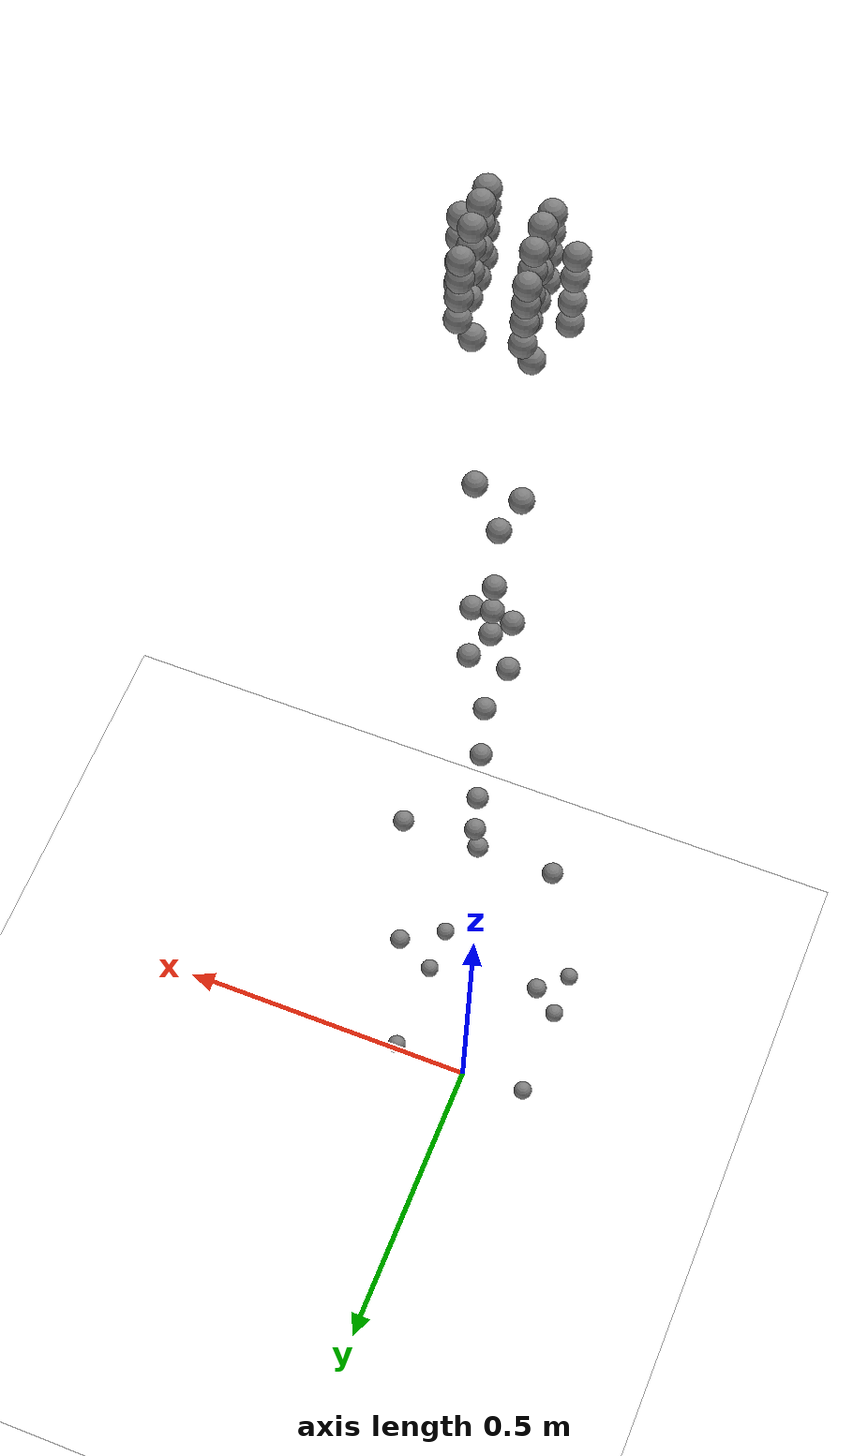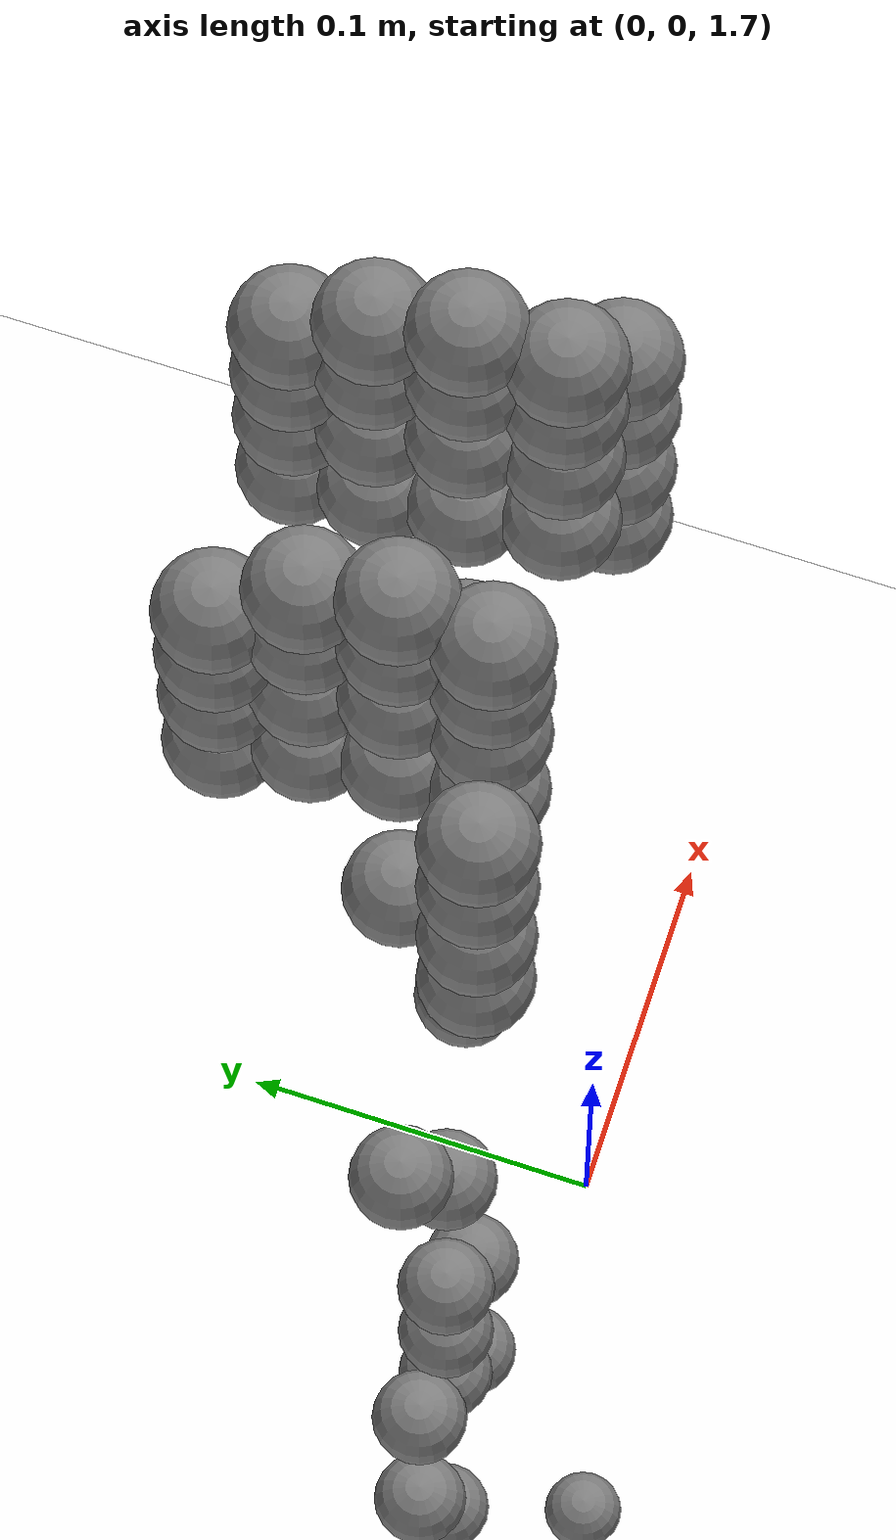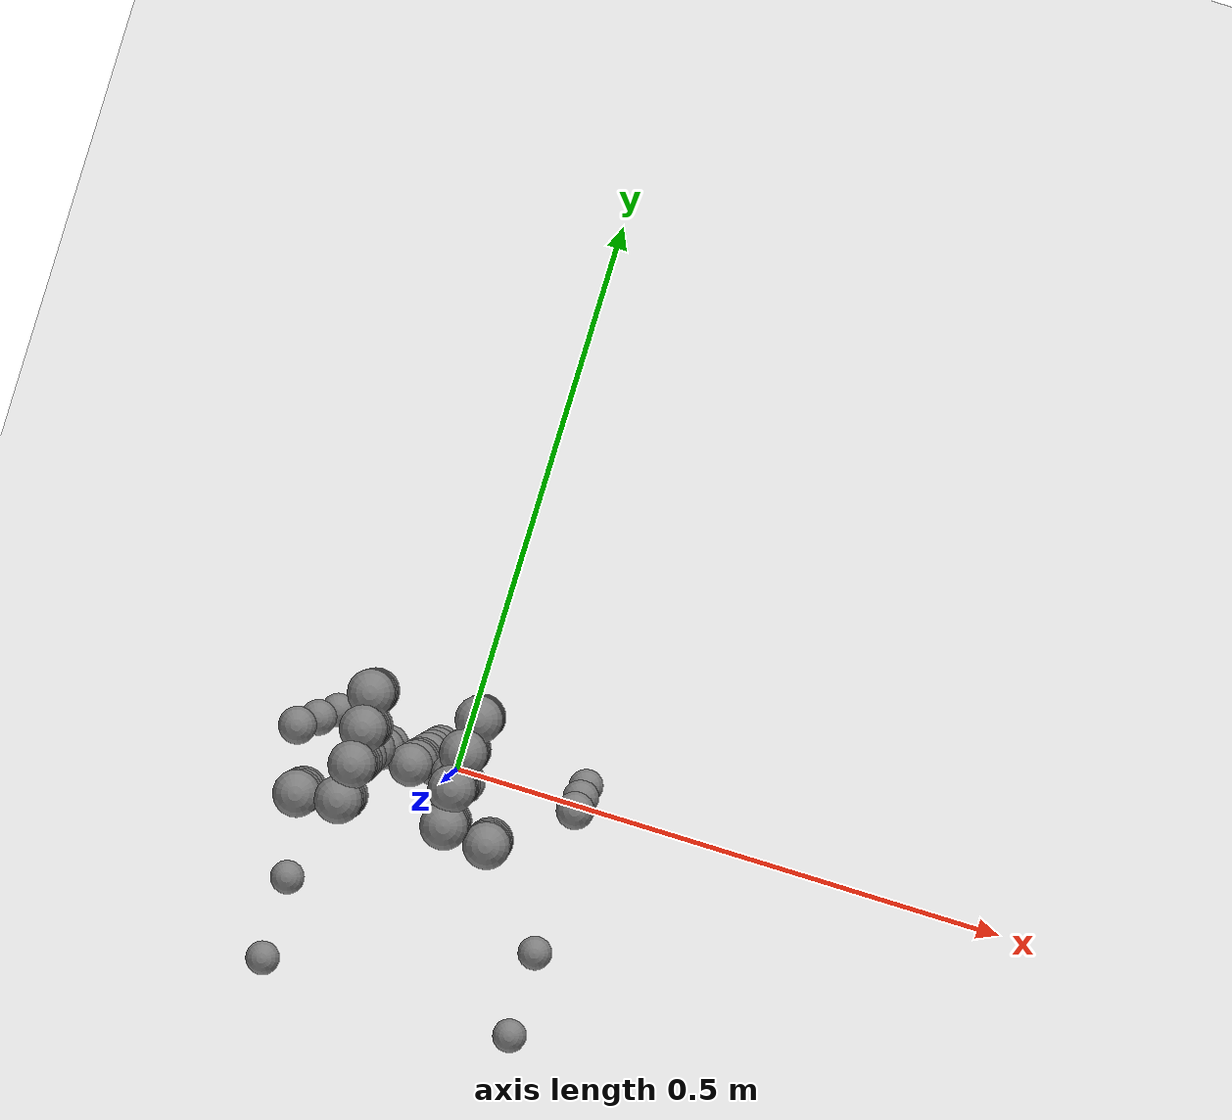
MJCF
<mujoco model="geno">
  <compiler angle="radian" meshdir="meshes" autolimits="true"/>
  <option timestep="0.005" iterations="50" tolerance="1e-10" solver="Newton" jacobian="dense" cone="elliptic"/>
  <size njmax="500" nconmax="100"/>
  <visual>
    <headlight diffuse="0.6 0.6 0.6" ambient="0.3 0.3 0.3" specular="0 0 0"/>
    <rgba haze="0.15 0.25 0.35 1"/>
    <global azimuth="-140" elevation="-20"/>
  </visual>
  <asset>
    <texture type="skybox" builtin="gradient" rgb1="1 1 1" rgb2="1 1 1" width="800" height="800"/>
    <texture type="2d" name="groundplane" builtin="checker" mark="edge" rgb1="1 1 1" rgb2="1 1 1" markrgb="0 0 0" width="300" height="300"/>
    <material name="groundplane" texture="groundplane" texuniform="true" texrepeat="5 5" reflectance="0"/>
  </asset>
  <worldbody>
    <light diffuse=".5 .5 .5" pos="0 0 3" dir="0 0 -1"/>
    <geom name="floor" size="0 0 0.05" type="plane" material="groundplane"/>
    <body name="Hips" pos="0.00013648943099999999 0.0213670418 0.855290222">
      <freejoint name="Hips"/>
      <site name="Hips" size="0.01" rgba="1 0 0 1"/>
      <geom type="sphere" size="0.015" rgba="0.5 0.5 0.5 1"/>
      <body name="Spine" pos="2.30099286e-07 0.020800323500000002 0.0881424618">
        <joint name="Spine" type="ball"/>
        <site name="Spine" size="0.01" rgba="1 0 0 1"/>
        <geom type="sphere" size="0.015" rgba="0.5 0.5 0.5 1"/>
        <body name="Spine1" pos="8.7261958e-09 2.72457055e-08 0.0884414387">
          <joint name="Spine1" type="ball"/>
          <site name="Spine1" size="0.01" rgba="1 0 0 1"/>
          <geom type="sphere" size="0.015" rgba="0.5 0.5 0.5 1"/>
          <body name="Spine2" pos="-2.55740429e-08 -4.31642138e-08 0.11682271999999999">
            <joint name="Spine2" type="ball"/>
            <site name="Spine2" size="0.01" rgba="1 0 0 1"/>
            <geom type="sphere" size="0.015" rgba="0.5 0.5 0.5 1"/>
            <body name="Spine3" pos="6.59586306e-09 3.93247592e-08 0.117466984">
              <joint name="Spine3" type="ball"/>
              <site name="Spine3" size="0.01" rgba="1 0 0 1"/>
              <geom type="sphere" size="0.015" rgba="0.5 0.5 0.5 1"/>
              <body name="Neck" pos="8.48960008e-08 8.42700974e-07 0.176582756">
                <joint name="Neck" type="ball"/>
                <site name="Neck" size="0.01" rgba="1 0 0 1"/>
                <geom type="sphere" size="0.015" rgba="0.5 0.5 0.5 1"/>
                <body name="Neck1" pos="3.79443094e-09 -3.26421036e-08 0.0510151863">
                  <joint name="Neck1" type="ball"/>
                  <site name="Neck1" size="0.01" rgba="1 0 0 1"/>
                  <geom type="sphere" size="0.015" rgba="0.5 0.5 0.5 1"/>
                  <body name="Head" pos="-9.479538680000001e-08 -8.865558809999999e-08 0.0510151625">
                    <joint name="Head" type="ball"/>
                    <site name="Head" size="0.01" rgba="1 0 0 1"/>
                    <geom type="sphere" size="0.015" rgba="0.5 0.5 0.5 1"/>
                    <body name="HeadEnd" pos="-4.13024277e-18 -5.50596564e-16 0.116550846">
                      <joint name="HeadEnd" type="ball"/>
                      <site name="HeadEnd" size="0.01" rgba="1 0 0 1"/>
                      <geom type="sphere" size="0.015" rgba="0.5 0.5 0.5 1"/>
                    </body>
                  </body>
                </body>
              </body>
              <body name="RightShoulder" pos="-0.0262538743 4.81263169e-08 0.111752224">
                <joint name="RightShoulder" type="ball"/>
                <site name="RightShoulder" size="0.01" rgba="1 0 0 1"/>
                <geom type="sphere" size="0.015" rgba="0.5 0.5 0.5 1"/>
                <body name="RightArm" pos="-1.50603675e-08 -1.24267818e-07 0.104347115">
                  <joint name="RightArm" type="ball"/>
                  <site name="RightArm" size="0.01" rgba="1 0 0 1"/>
                  <geom type="sphere" size="0.015" rgba="0.5 0.5 0.5 1"/>
                  <body name="RightForeArm" pos="0.00069977134 0.005369550010000001 0.258717893">
                    <joint name="RightForeArm" type="ball"/>
                    <site name="RightForeArm" size="0.01" rgba="1 0 0 1"/>
                    <geom type="sphere" size="0.015" rgba="0.5 0.5 0.5 1"/>
                    <body name="RightHand" pos="0.0029897696400000002 0.00033806178899999995 0.248929021">
                      <joint name="RightHand" type="ball"/>
                      <site name="RightHand" size="0.01" rgba="1 0 0 1"/>
                      <geom type="sphere" size="0.015" rgba="0.5 0.5 0.5 1"/>
                      <body name="RightHandThumb1" pos="-0.028673086200000003 -0.029442994599999998 0.0395956302">
                        <joint name="RightHandThumb1" type="ball"/>
                        <site name="RightHandThumb1" size="0.01" rgba="1 0 0 1"/>
                        <geom type="sphere" size="0.015" rgba="0.5 0.5 0.5 1"/>
                        <body name="RightHandThumb2" pos="5.44471726e-08 6.88177021e-09 0.0335039091">
                          <joint name="RightHandThumb2" type="ball"/>
                          <site name="RightHandThumb2" size="0.01" rgba="1 0 0 1"/>
                          <geom type="sphere" size="0.015" rgba="0.5 0.5 0.5 1"/>
                          <body name="RightHandThumb3" pos="-5.1811981199999995e-08 -3.88906735e-08 0.0375651813">
                            <joint name="RightHandThumb3" type="ball"/>
                            <site name="RightHandThumb3" size="0.01" rgba="1 0 0 1"/>
                            <geom type="sphere" size="0.015" rgba="0.5 0.5 0.5 1"/>
                            <body name="RightHandThumb4" pos="-4.830709819999999e-09 1.1163668099999998e-08 0.031473465">
                              <joint name="RightHandThumb4" type="ball"/>
                              <site name="RightHandThumb4" size="0.01" rgba="1 0 0 1"/>
                              <geom type="sphere" size="0.015" rgba="0.5 0.5 0.5 1"/>
                            </body>
                          </body>
                        </body>
                      </body>
                      <body name="RightHandIndex1" pos="-0.000867566392 -0.0234528232 0.10030899">
                        <joint name="RightHandIndex1" type="ball"/>
                        <site name="RightHandIndex1" size="0.01" rgba="1 0 0 1"/>
                        <geom type="sphere" size="0.015" rgba="0.5 0.5 0.5 1"/>
                        <body name="RightHandIndex2" pos="-3.76662116e-08 -3.4132215800000003e-08 0.0406108809">
                          <joint name="RightHandIndex2" type="ball"/>
                          <site name="RightHandIndex2" size="0.01" rgba="1 0 0 1"/>
                          <geom type="sphere" size="0.015" rgba="0.5 0.5 0.5 1"/>
                          <body name="RightHandIndex3" pos="2.12695065e-08 2.9199021699999998e-08 0.032488718">
                            <joint name="RightHandIndex3" type="ball"/>
                            <site name="RightHandIndex3" size="0.01" rgba="1 0 0 1"/>
                            <geom type="sphere" size="0.015" rgba="0.5 0.5 0.5 1"/>
                            <body name="RightHandIndex4" pos="1.19115619e-09 -2.31537559e-08 0.026397078">
                              <joint name="RightHandIndex4" type="ball"/>
                              <site name="RightHandIndex4" size="0.01" rgba="1 0 0 1"/>
                              <geom type="sphere" size="0.015" rgba="0.5 0.5 0.5 1"/>
                            </body>
                          </body>
                        </body>
                      </body>
                      <body name="RightHandMiddle1" pos="0.00104109198 -6.77696662e-05 0.0950295544">
                        <joint name="RightHandMiddle1" type="ball"/>
                        <site name="RightHandMiddle1" size="0.01" rgba="1 0 0 1"/>
                        <geom type="sphere" size="0.015" rgba="0.5 0.5 0.5 1"/>
                        <body name="RightHandMiddle2" pos="-4.00518747e-09 -5.93760964e-08 0.0456873274">
                          <joint name="RightHandMiddle2" type="ball"/>
                          <site name="RightHandMiddle2" size="0.01" rgba="1 0 0 1"/>
                          <geom type="sphere" size="0.015" rgba="0.5 0.5 0.5 1"/>
                          <body name="RightHandMiddle3" pos="7.54751455e-08 3.2926228599999997e-08 0.036549809">
                            <joint name="RightHandMiddle3" type="ball"/>
                            <site name="RightHandMiddle3" size="0.01" rgba="1 0 0 1"/>
                            <geom type="sphere" size="0.015" rgba="0.5 0.5 0.5 1"/>
                            <body name="RightHandMiddle4" pos="-2.4724227099999998e-08 -5.7228443499999995e-08 0.027412297699999998">
                              <joint name="RightHandMiddle4" type="ball"/>
                              <site name="RightHandMiddle4" size="0.01" rgba="1 0 0 1"/>
                              <geom type="sphere" size="0.015" rgba="0.5 0.5 0.5 1"/>
                            </body>
                          </body>
                        </body>
                      </body>
                      <body name="RightHandRing1" pos="0.000867536962 0.022674486599999998 0.08921710969999999">
                        <joint name="RightHandRing1" type="ball"/>
                        <site name="RightHandRing1" size="0.01" rgba="1 0 0 1"/>
                        <geom type="sphere" size="0.015" rgba="0.5 0.5 0.5 1"/>
                        <body name="RightHandRing2" pos="-8.494164849999999e-08 -8.33849263e-10 0.0406109715">
                          <joint name="RightHandRing2" type="ball"/>
                          <site name="RightHandRing2" size="0.01" rgba="1 0 0 1"/>
                          <geom type="sphere" size="0.015" rgba="0.5 0.5 0.5 1"/>
                          <body name="RightHandRing3" pos="-2.69741424e-09 -8.05873964e-08 0.036549761300000004">
                            <joint name="RightHandRing3" type="ball"/>
                            <site name="RightHandRing3" size="0.01" rgba="1 0 0 1"/>
                            <geom type="sphere" size="0.015" rgba="0.5 0.5 0.5 1"/>
                            <body name="RightHandRing4" pos="-1.75682811e-09 6.02012545e-09 0.0274124503">
                              <joint name="RightHandRing4" type="ball"/>
                              <site name="RightHandRing4" size="0.01" rgba="1 0 0 1"/>
                              <geom type="sphere" size="0.015" rgba="0.5 0.5 0.5 1"/>
                            </body>
                          </body>
                        </body>
                      </body>
                      <body name="RightHandPinky1" pos="-0.0017349013699999999 0.044672045699999996 0.0797699213">
                        <joint name="RightHandPinky1" type="ball"/>
                        <site name="RightHandPinky1" size="0.01" rgba="1 0 0 1"/>
                        <geom type="sphere" size="0.015" rgba="0.5 0.5 0.5 1"/>
                        <body name="RightHandPinky2" pos="-5.09637176e-08 1.14142521e-07 0.0335040545">
                          <joint name="RightHandPinky2" type="ball"/>
                          <site name="RightHandPinky2" size="0.01" rgba="1 0 0 1"/>
                          <geom type="sphere" size="0.015" rgba="0.5 0.5 0.5 1"/>
                          <body name="RightHandPinky3" pos="-2.4106434500000002e-08 -3.31119791e-09 0.0284276104">
                            <joint name="RightHandPinky3" type="ball"/>
                            <site name="RightHandPinky3" size="0.01" rgba="1 0 0 1"/>
                            <geom type="sphere" size="0.015" rgba="0.5 0.5 0.5 1"/>
                            <body name="RightHandPinky4" pos="-4.84227395e-08 -4.19883692e-08 0.0263970661">
                              <joint name="RightHandPinky4" type="ball"/>
                              <site name="RightHandPinky4" size="0.01" rgba="1 0 0 1"/>
                              <geom type="sphere" size="0.015" rgba="0.5 0.5 0.5 1"/>
                            </body>
                          </body>
                        </body>
                      </body>
                      <body name="RightForeArmEnd" pos="-2.56183113e-16 6.35784429e-19 -1.74232385e-18">
                        <joint name="RightForeArmEnd" type="ball"/>
                        <site name="RightForeArmEnd" size="0.01" rgba="1 0 0 1"/>
                        <geom type="sphere" size="0.015" rgba="0.5 0.5 0.5 1"/>
                      </body>
                    </body>
                    <body name="RightArmEnd" pos="-6.998603949999999e-16 1.81852944e-18 1.22731819e-16">
                      <joint name="RightArmEnd" type="ball"/>
                      <site name="RightArmEnd" size="0.01" rgba="1 0 0 1"/>
                      <geom type="sphere" size="0.015" rgba="0.5 0.5 0.5 1"/>
                    </body>
                  </body>
                </body>
              </body>
              <body name="LeftShoulder" pos="0.026253914800000003 5.8317759800000006e-08 0.111752157">
                <joint name="LeftShoulder" type="ball"/>
                <site name="LeftShoulder" size="0.01" rgba="1 0 0 1"/>
                <geom type="sphere" size="0.015" rgba="0.5 0.5 0.5 1"/>
                <body name="LeftArm" pos="5.6675547500000004e-08 4.22273472e-08 0.108136358">
                  <joint name="LeftArm" type="ball"/>
                  <site name="LeftArm" size="0.01" rgba="1 0 0 1"/>
                  <geom type="sphere" size="0.015" rgba="0.5 0.5 0.5 1"/>
                  <body name="LeftForeArm" pos="0.00495176165 0.00449427606 0.255930268">
                    <joint name="LeftForeArm" type="ball"/>
                    <site name="LeftForeArm" size="0.01" rgba="1 0 0 1"/>
                    <geom type="sphere" size="0.015" rgba="0.5 0.5 0.5 1"/>
                    <body name="LeftHand" pos="0.0117407218 0.005204860770000001 0.259241226">
                      <joint name="LeftHand" type="ball"/>
                      <site name="LeftHand" size="0.01" rgba="1 0 0 1"/>
                      <geom type="sphere" size="0.015" rgba="0.5 0.5 0.5 1"/>
                      <body name="LeftHandThumb1" pos="0.0286732364 -0.029442858699999998 0.0395956516">
                        <joint name="LeftHandThumb1" type="ball"/>
                        <site name="LeftHandThumb1" size="0.01" rgba="1 0 0 1"/>
                        <geom type="sphere" size="0.015" rgba="0.5 0.5 0.5 1"/>
                        <body name="LeftHandThumb2" pos="4.51622475e-08 6.45308119e-08 0.0335040307">
                          <joint name="LeftHandThumb2" type="ball"/>
                          <site name="LeftHandThumb2" size="0.01" rgba="1 0 0 1"/>
                          <geom type="sphere" size="0.015" rgba="0.5 0.5 0.5 1"/>
                          <body name="LeftHandThumb3" pos="-4.4710781699999994e-08 -2.93693687e-08 0.037565124">
                            <joint name="LeftHandThumb3" type="ball"/>
                            <site name="LeftHandThumb3" size="0.01" rgba="1 0 0 1"/>
                            <geom type="sphere" size="0.015" rgba="0.5 0.5 0.5 1"/>
                            <body name="LeftHandThumb4" pos="5.8781243699999995e-08 -6.19059526e-09 0.0309999704">
                              <joint name="LeftHandThumb4" type="ball"/>
                              <site name="LeftHandThumb4" size="0.01" rgba="1 0 0 1"/>
                              <geom type="sphere" size="0.015" rgba="0.5 0.5 0.5 1"/>
                            </body>
                          </body>
                        </body>
                      </body>
                      <body name="LeftHandIndex1" pos="0.000867575407 -0.023452754 0.100309181">
                        <joint name="LeftHandIndex1" type="ball"/>
                        <site name="LeftHandIndex1" size="0.01" rgba="1 0 0 1"/>
                        <geom type="sphere" size="0.015" rgba="0.5 0.5 0.5 1"/>
                        <body name="LeftHandIndex2" pos="2.42767352e-08 3.08199487e-08 0.0406109953">
                          <joint name="LeftHandIndex2" type="ball"/>
                          <site name="LeftHandIndex2" size="0.01" rgba="1 0 0 1"/>
                          <geom type="sphere" size="0.015" rgba="0.5 0.5 0.5 1"/>
                          <body name="LeftHandIndex3" pos="8.04225515e-08 8.45241096e-09 0.03248873">
                            <joint name="LeftHandIndex3" type="ball"/>
                            <site name="LeftHandIndex3" size="0.01" rgba="1 0 0 1"/>
                            <geom type="sphere" size="0.015" rgba="0.5 0.5 0.5 1"/>
                            <body name="LeftHandIndex4" pos="1.72217163e-08 2.5227572e-08 0.0263970876">
                              <joint name="LeftHandIndex4" type="ball"/>
                              <site name="LeftHandIndex4" size="0.01" rgba="1 0 0 1"/>
                              <geom type="sphere" size="0.015" rgba="0.5 0.5 0.5 1"/>
                            </body>
                          </body>
                        </body>
                      </body>
                      <body name="LeftHandMiddle1" pos="-0.00104109183 -6.76779216e-05 0.09502980230000001">
                        <joint name="LeftHandMiddle1" type="ball"/>
                        <site name="LeftHandMiddle1" size="0.01" rgba="1 0 0 1"/>
                        <geom type="sphere" size="0.015" rgba="0.5 0.5 0.5 1"/>
                        <body name="LeftHandMiddle2" pos="9.37434926e-08 9.79924987e-08 0.045687375100000004">
                          <joint name="LeftHandMiddle2" type="ball"/>
                          <site name="LeftHandMiddle2" size="0.01" rgba="1 0 0 1"/>
                          <geom type="sphere" size="0.015" rgba="0.5 0.5 0.5 1"/>
                          <body name="LeftHandMiddle3" pos="4.04745486e-09 6.22627218e-08 0.0365497494">
                            <joint name="LeftHandMiddle3" type="ball"/>
                            <site name="LeftHandMiddle3" size="0.01" rgba="1 0 0 1"/>
                            <geom type="sphere" size="0.015" rgba="0.5 0.5 0.5 1"/>
                            <body name="LeftHandMiddle4" pos="6.56328438e-08 -2.1488132200000003e-08 0.027412438400000003">
                              <joint name="LeftHandMiddle4" type="ball"/>
                              <site name="LeftHandMiddle4" size="0.01" rgba="1 0 0 1"/>
                              <geom type="sphere" size="0.015" rgba="0.5 0.5 0.5 1"/>
                            </body>
                          </body>
                        </body>
                      </body>
                      <body name="LeftHandRing1" pos="-0.000867514238 0.0226744246 0.0892171001">
                        <joint name="LeftHandRing1" type="ball"/>
                        <site name="LeftHandRing1" size="0.01" rgba="1 0 0 1"/>
                        <geom type="sphere" size="0.015" rgba="0.5 0.5 0.5 1"/>
                        <body name="LeftHandRing2" pos="2.8426056599999997e-08 -1.66922936e-08 0.040610981">
                          <joint name="LeftHandRing2" type="ball"/>
                          <site name="LeftHandRing2" size="0.01" rgba="1 0 0 1"/>
                          <geom type="sphere" size="0.015" rgba="0.5 0.5 0.5 1"/>
                          <body name="LeftHandRing3" pos="2.69776163e-08 4.2109282e-09 0.0365499043">
                            <joint name="LeftHandRing3" type="ball"/>
                            <site name="LeftHandRing3" size="0.01" rgba="1 0 0 1"/>
                            <geom type="sphere" size="0.015" rgba="0.5 0.5 0.5 1"/>
                            <body name="LeftHandRing4" pos="-3.79034851e-08 -8.99070159e-08 0.027412307299999997">
                              <joint name="LeftHandRing4" type="ball"/>
                              <site name="LeftHandRing4" size="0.01" rgba="1 0 0 1"/>
                              <geom type="sphere" size="0.015" rgba="0.5 0.5 0.5 1"/>
                            </body>
                          </body>
                        </body>
                      </body>
                      <body name="LeftHandPinky1" pos="0.0017350249 0.04467214109999999 0.0797701931">
                        <joint name="LeftHandPinky1" type="ball"/>
                        <site name="LeftHandPinky1" size="0.01" rgba="1 0 0 1"/>
                        <geom type="sphere" size="0.015" rgba="0.5 0.5 0.5 1"/>
                        <body name="LeftHandPinky2" pos="7.27843511e-08 9.3553765e-09 0.0335040712">
                          <joint name="LeftHandPinky2" type="ball"/>
                          <site name="LeftHandPinky2" size="0.01" rgba="1 0 0 1"/>
                          <geom type="sphere" size="0.015" rgba="0.5 0.5 0.5 1"/>
                          <body name="LeftHandPinky3" pos="-5.85262889e-08 -4.58743125e-08 0.0284276485">
                            <joint name="LeftHandPinky3" type="ball"/>
                            <site name="LeftHandPinky3" size="0.01" rgba="1 0 0 1"/>
                            <geom type="sphere" size="0.015" rgba="0.5 0.5 0.5 1"/>
                            <body name="LeftHandPinky4" pos="-7.78088633e-08 4.94400273e-08 0.0263970661">
                              <joint name="LeftHandPinky4" type="ball"/>
                              <site name="LeftHandPinky4" size="0.01" rgba="1 0 0 1"/>
                              <geom type="sphere" size="0.015" rgba="0.5 0.5 0.5 1"/>
                            </body>
                          </body>
                        </body>
                      </body>
                      <body name="LeftForeArmEnd" pos="0.0 -0.0 0.0">
                        <joint name="LeftForeArmEnd" type="ball"/>
                        <site name="LeftForeArmEnd" size="0.01" rgba="1 0 0 1"/>
                        <geom type="sphere" size="0.015" rgba="0.5 0.5 0.5 1"/>
                      </body>
                    </body>
                    <body name="LeftArmEnd" pos="4.00792269e-16 9.155368789999999e-18 -3.03205474e-17">
                      <joint name="LeftArmEnd" type="ball"/>
                      <site name="LeftArmEnd" size="0.01" rgba="1 0 0 1"/>
                      <geom type="sphere" size="0.015" rgba="0.5 0.5 0.5 1"/>
                    </body>
                  </body>
                </body>
              </body>
            </body>
          </body>
        </body>
      </body>
      <body name="RightUpLeg" pos="-0.112899361 -4.37811241e-08 -5.41907593e-08">
        <joint name="RightUpLeg" type="ball"/>
        <site name="RightUpLeg" size="0.01" rgba="1 0 0 1"/>
        <geom type="sphere" size="0.015" rgba="0.5 0.5 0.5 1"/>
        <body name="RightLeg" pos="4.06874415e-08 2.16508837e-06 -0.382003288">
          <joint name="RightLeg" type="ball"/>
          <site name="RightLeg" size="0.01" rgba="1 0 0 1"/>
          <geom type="sphere" size="0.015" rgba="0.5 0.5 0.5 1"/>
          <body name="RightFoot" pos="2.34040795e-08 1.7754560999999998e-08 -0.399008484">
            <joint name="RightFoot" type="ball"/>
            <site name="RightFoot" size="0.01" rgba="1 0 0 1"/>
            <geom type="sphere" size="0.015" rgba="0.5 0.5 0.5 1"/>
            <body name="RightToeBase" pos="8.322946090000001e-08 -0.152616587 -2.00084855e-08">
              <joint name="RightToeBase" type="ball"/>
              <site name="RightToeBase" size="0.01" rgba="1 0 0 1"/>
              <geom type="sphere" size="0.015" rgba="0.5 0.5 0.5 1"/>
              <body name="RightToeBaseEnd" pos="1.1352030400000002e-16 -0.0737070894 -2.6645352600000003e-17">
                <joint name="RightToeBaseEnd" type="ball"/>
                <site name="RightToeBaseEnd" size="0.01" rgba="1 0 0 1"/>
                <geom type="sphere" size="0.015" rgba="0.5 0.5 0.5 1"/>
              </body>
            </body>
            <body name="RightLegEnd" pos="3.7732815600000004e-18 -1.54514225e-17 -3.17678035e-17">
              <joint name="RightLegEnd" type="ball"/>
              <site name="RightLegEnd" size="0.01" rgba="1 0 0 1"/>
              <geom type="sphere" size="0.015" rgba="0.5 0.5 0.5 1"/>
            </body>
          </body>
          <body name="RightUpLegEnd" pos="0.0 -0.0 0.0">
            <joint name="RightUpLegEnd" type="ball"/>
            <site name="RightUpLegEnd" size="0.01" rgba="1 0 0 1"/>
            <geom type="sphere" size="0.015" rgba="0.5 0.5 0.5 1"/>
          </body>
        </body>
      </body>
      <body name="LeftUpLeg" pos="0.113156643 -3.5843104300000004e-08 5.637718e-08">
        <joint name="LeftUpLeg" type="ball"/>
        <site name="LeftUpLeg" size="0.01" rgba="1 0 0 1"/>
        <geom type="sphere" size="0.015" rgba="0.5 0.5 0.5 1"/>
        <body name="LeftLeg" pos="3.96562187e-06 -3.90832592e-05 -0.382004128">
          <joint name="LeftLeg" type="ball"/>
          <site name="LeftLeg" size="0.01" rgba="1 0 0 1"/>
          <geom type="sphere" size="0.015" rgba="0.5 0.5 0.5 1"/>
          <body name="LeftFoot" pos="6.99668022e-09 -1.10017036e-07 -0.399008179">
            <joint name="LeftFoot" type="ball"/>
            <site name="LeftFoot" size="0.01" rgba="1 0 0 1"/>
            <geom type="sphere" size="0.015" rgba="0.5 0.5 0.5 1"/>
            <body name="LeftToeBase" pos="1.27913745e-08 -0.152616472 -6.146619399999999e-08">
              <joint name="LeftToeBase" type="ball"/>
              <site name="LeftToeBase" size="0.01" rgba="1 0 0 1"/>
              <geom type="sphere" size="0.015" rgba="0.5 0.5 0.5 1"/>
              <body name="LeftToeBaseEnd" pos="-2.9873673e-16 -0.0753999615 9.85322934e-17">
                <joint name="LeftToeBaseEnd" type="ball"/>
                <site name="LeftToeBaseEnd" size="0.01" rgba="1 0 0 1"/>
                <geom type="sphere" size="0.015" rgba="0.5 0.5 0.5 1"/>
              </body>
            </body>
            <body name="LeftLegEnd" pos="-2.2540700399999998e-18 -1.59377203e-17 7.51349475e-18">
              <joint name="LeftLegEnd" type="ball"/>
              <site name="LeftLegEnd" size="0.01" rgba="1 0 0 1"/>
              <geom type="sphere" size="0.015" rgba="0.5 0.5 0.5 1"/>
            </body>
          </body>
          <body name="LeftUpLegEnd" pos="0.0 -0.0 0.0">
            <joint name="LeftUpLegEnd" type="ball"/>
            <site name="LeftUpLegEnd" size="0.01" rgba="1 0 0 1"/>
            <geom type="sphere" size="0.015" rgba="0.5 0.5 0.5 1"/>
          </body>
        </body>
      </body>
    </body>
  </worldbody>
</mujoco>
